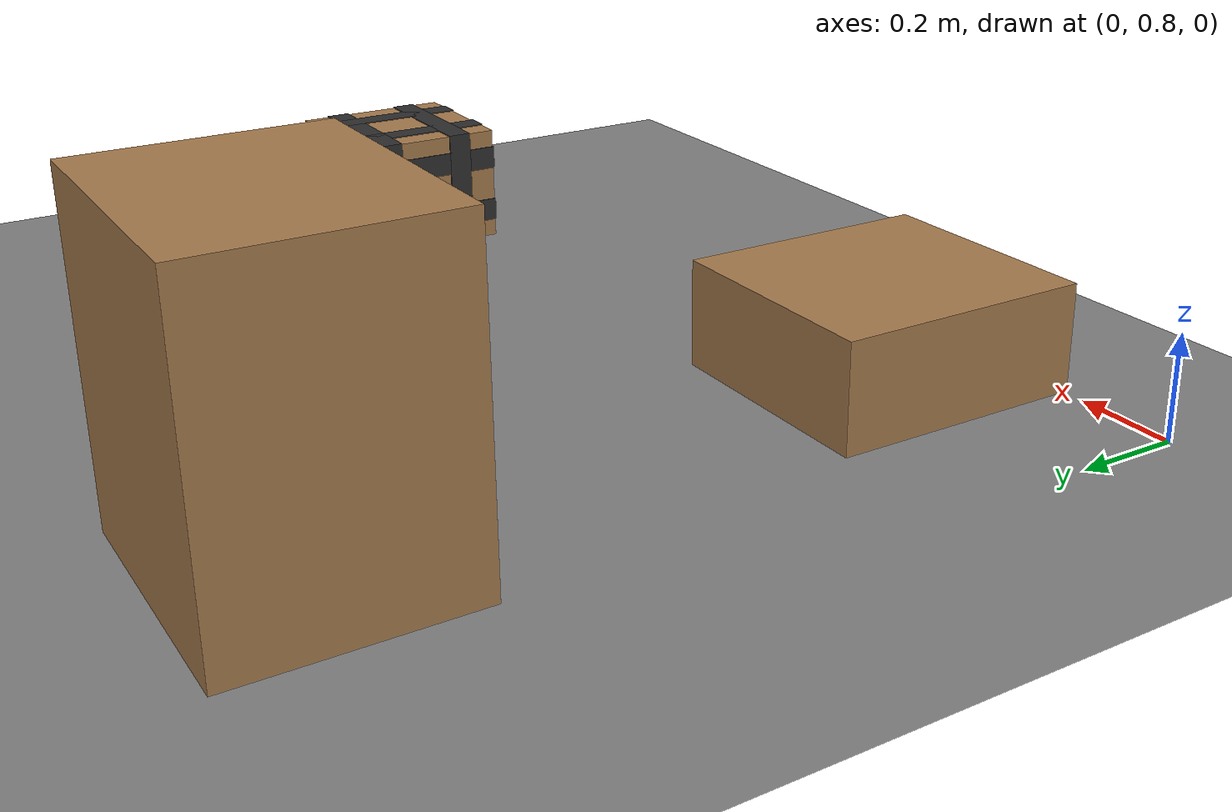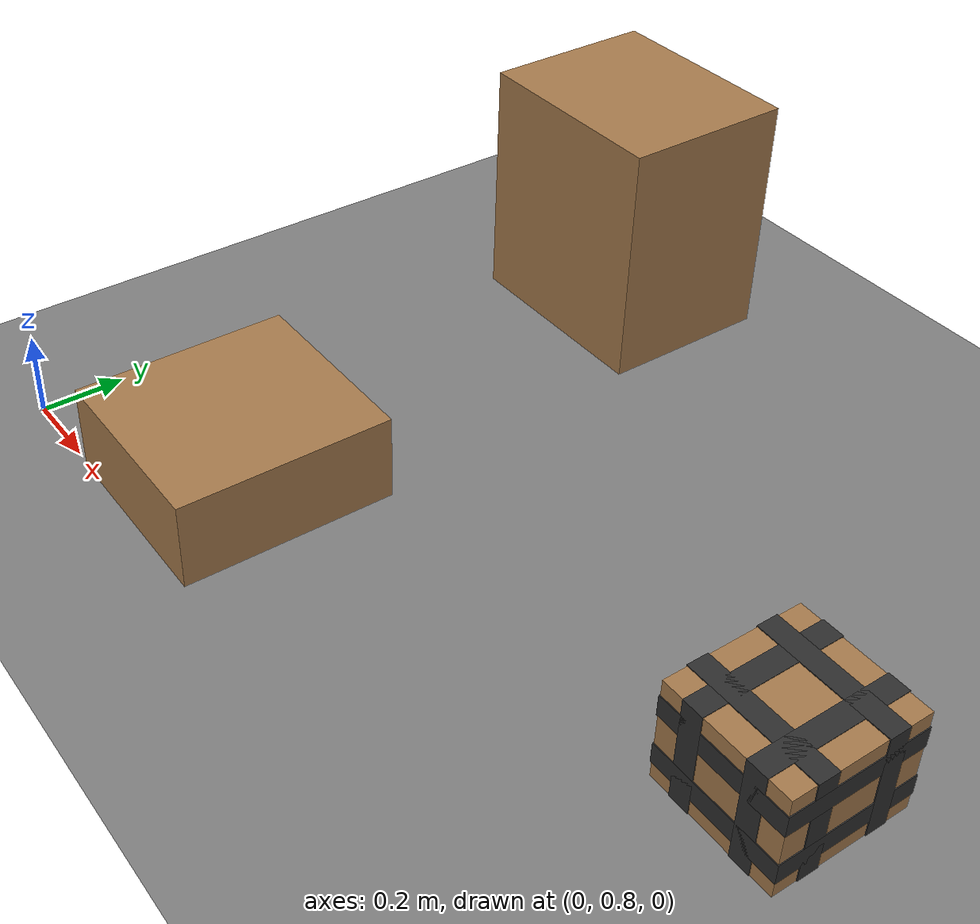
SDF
<sdf version="1.9">
 <world name="ecps295_lowbox_s24_monitor">
  <model name="ground_plane">
   <static>true</static>
   <link name="link">
    <collision name="collision">
     <geometry><plane><normal>0 0 1</normal><size>50 50</size></plane></geometry>
    </collision>
    <visual name="visual">
     <geometry><plane><normal>0 0 1</normal><size>50 50</size></plane></geometry>
     <material><ambient>0.5 0.5 0.5 1</ambient><diffuse>0.5 0.5 0.5 1</diffuse></material>
    </visual>
   </link>
  </model>
  <model name="lb1">
   <static>true</static>
   <pose>0.4 2.21 0.296 0 0 0</pose>
   <link name="link">
    <collision name="c"><geometry><box><size>0.51 0.42 0.59</size></box></geometry></collision>
    <visual name="v">
     <geometry><box><size>0.51 0.42 0.59</size></box></geometry>
     <material><ambient>0.65 0.48 0.30 1</ambient><diffuse>0.65 0.48 0.30 1</diffuse></material>
    </visual>
   </link>
  </model>
  <model name="lb3">
   <static>true</static>
   <pose>1.77 1.43 0.123 0 0 0</pose>
   <link name="link">
    <collision name="c"><geometry><box><size>0.31 0.33 0.25</size></box></geometry></collision>
    <visual name="v">
     <geometry><box><size>0.31 0.33 0.25</size></box></geometry>
     <material><ambient>0.65 0.48 0.30 1</ambient><diffuse>0.65 0.48 0.30 1</diffuse></material>
    </visual>
    <visual name="tape_ring0">
     <pose>0.000 0.000 -0.062 0 0 0</pose>
     <geometry><box><size>0.314 0.334 0.050</size></box></geometry>
     <material><ambient>0.18 0.18 0.18 1</ambient><diffuse>0.18 0.18 0.18 1</diffuse></material>
    </visual>
    <visual name="tape_bx0">
     <pose>-0.077 0.000 0.000 0 0 0</pose>
     <geometry><box><size>0.050 0.334 0.254</size></box></geometry>
     <material><ambient>0.18 0.18 0.18 1</ambient><diffuse>0.18 0.18 0.18 1</diffuse></material>
    </visual>
    <visual name="tape_by0">
     <pose>0.000 -0.083 0.000 0 0 0</pose>
     <geometry><box><size>0.314 0.050 0.254</size></box></geometry>
     <material><ambient>0.18 0.18 0.18 1</ambient><diffuse>0.18 0.18 0.18 1</diffuse></material>
    </visual>
    <visual name="tape_ring1">
     <pose>0.000 0.000 0.062 0 0 0</pose>
     <geometry><box><size>0.314 0.334 0.050</size></box></geometry>
     <material><ambient>0.18 0.18 0.18 1</ambient><diffuse>0.18 0.18 0.18 1</diffuse></material>
    </visual>
    <visual name="tape_bx1">
     <pose>0.077 0.000 0.000 0 0 0</pose>
     <geometry><box><size>0.050 0.334 0.254</size></box></geometry>
     <material><ambient>0.18 0.18 0.18 1</ambient><diffuse>0.18 0.18 0.18 1</diffuse></material>
    </visual>
    <visual name="tape_by1">
     <pose>0.000 0.083 0.000 0 0 0</pose>
     <geometry><box><size>0.314 0.050 0.254</size></box></geometry>
     <material><ambient>0.18 0.18 0.18 1</ambient><diffuse>0.18 0.18 0.18 1</diffuse></material>
    </visual>
   </link>
  </model>
  <model name="lb5">
   <static>true</static>
   <pose>0.48 1.05 0.106 0 0 0</pose>
   <link name="link">
    <collision name="c"><geometry><box><size>0.47 0.51 0.21</size></box></geometry></collision>
    <visual name="v">
     <geometry><box><size>0.47 0.51 0.21</size></box></geometry>
     <material><ambient>0.65 0.48 0.30 1</ambient><diffuse>0.65 0.48 0.30 1</diffuse></material>
    </visual>
   </link>
  </model>
 </world>
</sdf>
